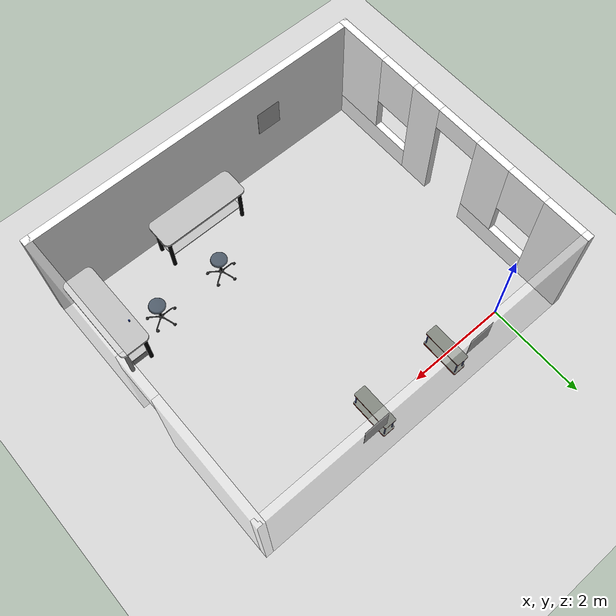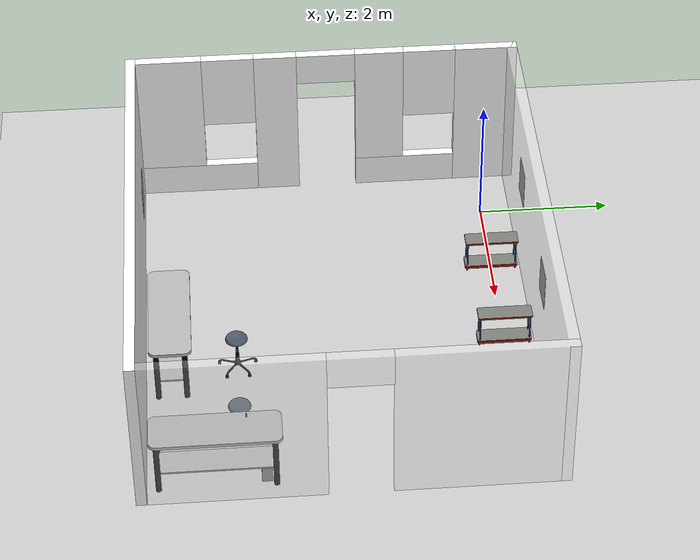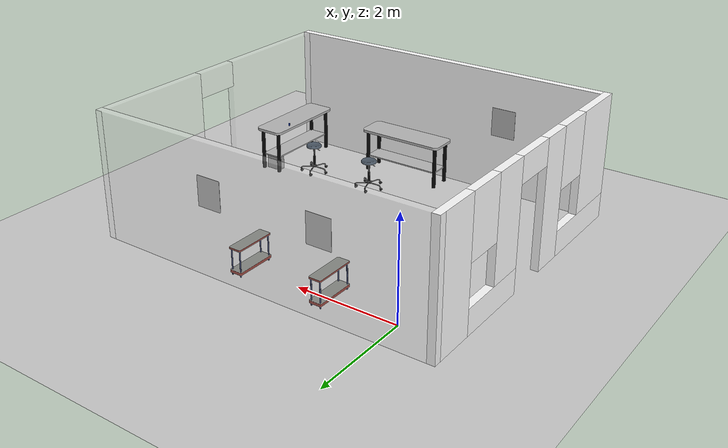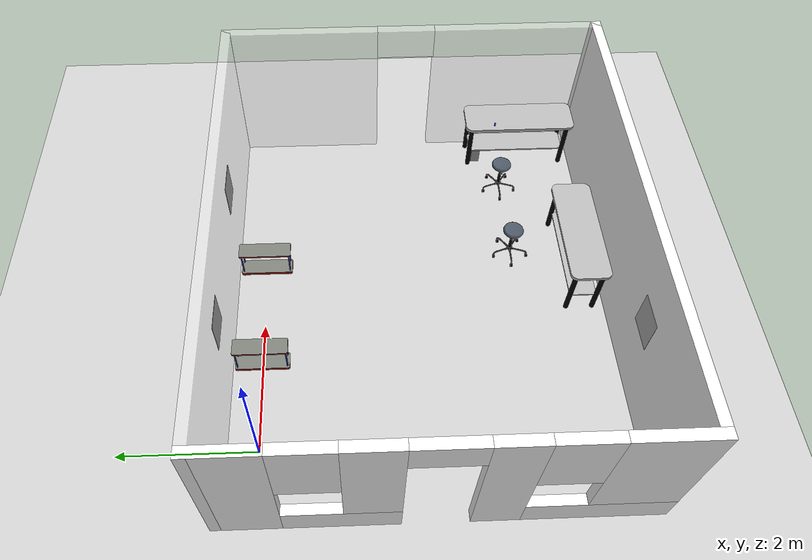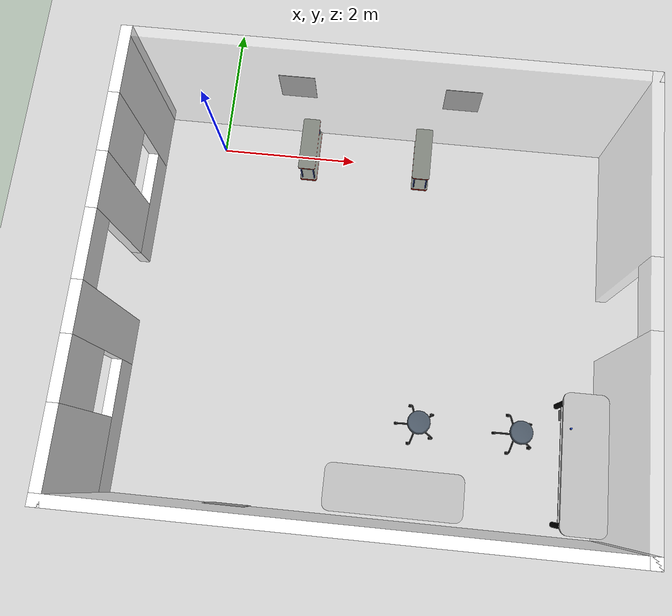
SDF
<sdf version="1.7">
 <world name="default">
  <light name="sun" type="directional">
   <pose>0 0 10 0 -0 0</pose>
   <diffuse>0.8 0.8 0.8 1</diffuse>
   <specular>0.2 0.2 0.2 1</specular>
   <attenuation>
    <range>1000</range>
    <constant>0.9</constant>
    <linear>0.01</linear>
    <quadratic>0.001</quadratic>
   </attenuation>
   <direction>-0.5 0.1 -0.9</direction>
   <spot><inner_angle>0</inner_angle><outer_angle>0</outer_angle><falloff>0</falloff></spot>
  </light>
  <model name="ground_plane">
   <pose>2.4 -2.4 0 0 -0 1.5708</pose>
   <static>1</static>
   <link name="link">
    <collision name="collision">
     <geometry><plane><normal>0 0 1</normal><size>100 100</size></plane></geometry>
     <surface><friction><ode><mu>100</mu><mu2>50</mu2></ode></friction></surface>
    </collision>
    <visual name="visual">
     <cast_shadows>0</cast_shadows>
     <geometry><plane><normal>0 0 1</normal><size>6 7</size></plane></geometry>
     <material>
      <script>
       <uri>model://room/materials/scripts</uri>
       <uri>model://room/materials/textures</uri>
       <name>ground/material</name>
      </script>
     </material>
    </visual>
   </link>
  </model>
  <gravity>0 0 -9.8</gravity>
  <magnetic_field>6e-06 2.3e-05 -4.2e-05</magnetic_field>
  <atmosphere type="adiabatic"/>
  <physics type="ode">
   <max_step_size>0.001</max_step_size>
   <real_time_factor>1</real_time_factor>
   <real_time_update_rate>1000</real_time_update_rate>
  </physics>
  <scene><ambient>0.4 0.4 0.4 1</ambient><background>0.7 0.7 0.7 1</background><shadows>1</shadows></scene>
  <spherical_coordinates>
   <surface_model>EARTH_WGS84</surface_model>
   <latitude_deg>0</latitude_deg>
   <longitude_deg>0</longitude_deg>
   <elevation>0</elevation>
   <heading_deg>0</heading_deg>
  </spherical_coordinates>
  <model name="room">
   <pose>2.45415 -2.72247 0 0 -0 0</pose>
   <link name="Wall_11">
    <pose>0 3.24692 0 0 -0 0</pose>
    <inertial>
     <mass>1</mass>
     <inertia><ixx>1</ixx><ixy>0</ixy><ixz>0</ixz><iyy>1</iyy><iyz>0</iyz><izz>1</izz></inertia>
    </inertial>
    <visual name="Wall_11_Visual">
     <pose>0 0 1.25 0 -0 0</pose>
     <geometry><box><size>7 0.15 2.5</size></box></geometry>
     <material>
      <script>
       <uri>model://room/materials/scripts</uri>
       <uri>model://room/materials/textures</uri>
       <name>testing/material</name>
      </script>
      <ambient>1 1 1 1</ambient>
      <shader type="pixel"><normal_map>__default__</normal_map></shader>
      <diffuse>1 1 1 1</diffuse>
      <specular>0 0 0 1</specular>
      <emissive>0 0 0 1</emissive>
     </material>
     <meta><layer>0</layer></meta>
     <transparency>0.7</transparency>
    </visual>
    <collision name="Wall_11_Collision">
     <pose>0 0 1.25 0 -0 0</pose>
     <geometry><box><size>7 0.15 2.5</size></box></geometry>
     <surface>
      <friction>
       <ode><mu>1</mu><mu2>1</mu2><fdir1>0 0 0</fdir1><slip1>0</slip1><slip2>0</slip2></ode>
       <torsional>
        <coefficient>1</coefficient>
        <patch_radius>0</patch_radius>
        <surface_radius>0</surface_radius>
        <use_patch_radius>1</use_patch_radius>
        <ode><slip>0</slip></ode>
       </torsional>
      </friction>
      <bounce><restitution_coefficient>0</restitution_coefficient><threshold>1e+06</threshold></bounce>
      <contact>
       <collide_without_contact>0</collide_without_contact>
       <collide_without_contact_bitmask>1</collide_without_contact_bitmask>
       <collide_bitmask>1</collide_bitmask>
       <ode>
        <soft_cfm>0</soft_cfm>
        <soft_erp>0.2</soft_erp>
        <kp>1e+13</kp>
        <kd>1</kd>
        <max_vel>0.01</max_vel>
        <min_depth>0</min_depth>
       </ode>
       <bullet>
        <split_impulse>1</split_impulse>
        <split_impulse_penetration_threshold>-0.01</split_impulse_penetration_threshold>
        <soft_cfm>0</soft_cfm>
        <soft_erp>0.2</soft_erp>
        <kp>1e+13</kp>
        <kd>1</kd>
       </bullet>
      </contact>
     </surface>
    </collision>
   </link>
   <link name="Wall_5">
    <pose>-3.425 0.321923 0 0 0 -1.5708</pose>
    <visual name="Wall_5_Visual_0">
     <pose>-2.52329 0 1.25 0 -0 0</pose>
     <geometry><box><size>0.953415 0.15 2.5</size></box></geometry>
     <material>
      <script>
       <uri>model://room/materials/scripts</uri>
       <uri>model://room/materials/textures</uri>
       <name>testing/material</name>
      </script>
      <ambient>1 1 1 1</ambient>
      <shader type="pixel"/>
     </material>
     <meta><layer>0</layer></meta>
    </visual>
    <visual name="Wall_5_Visual_1">
     <pose>0.726172 0 1.25 0 -0 0</pose>
     <geometry><box><size>0.653489 0.15 2.5</size></box></geometry>
     <material>
      <script>
       <uri>model://room/materials/scripts</uri>
       <uri>model://room/materials/textures</uri>
       <name>testing/material</name>
      </script>
      <ambient>1 1 1 1</ambient>
      <shader type="pixel"/>
     </material>
     <meta><layer>0</layer></meta>
    </visual>
    <visual name="Wall_5_Visual_2">
     <pose>-1.27358 0 0.25 0 -0 0</pose>
     <geometry><box><size>1.54601 0.15 0.5</size></box></geometry>
     <material>
      <script>
       <uri>model://room/materials/scripts</uri>
       <uri>model://room/materials/textures</uri>
       <name>testing/material</name>
      </script>
      <ambient>1 1 1 1</ambient>
      <shader type="pixel"/>
     </material>
     <meta><layer>0</layer></meta>
    </visual>
    <visual name="Wall_5_Visual_3">
     <pose>2.02646 0 0.25 0 -0 0</pose>
     <geometry><box><size>1.94708 0.15 0.5</size></box></geometry>
     <material>
      <script>
       <uri>model://room/materials/scripts</uri>
       <uri>model://room/materials/textures</uri>
       <name>testing/material</name>
      </script>
      <ambient>1 1 1 1</ambient>
      <shader type="pixel"/>
     </material>
     <meta><layer>0</layer></meta>
    </visual>
    <visual name="Wall_5_Visual_4">
     <pose>-0.873579 0 1.5 0 -0 0</pose>
     <geometry><box><size>0.746012 0.15 2</size></box></geometry>
     <material>
      <script>
       <uri>model://room/materials/scripts</uri>
       <uri>model://room/materials/textures</uri>
       <name>testing/material</name>
      </script>
      <ambient>1 1 1 1</ambient>
      <shader type="pixel"/>
     </material>
     <meta><layer>0</layer></meta>
    </visual>
    <visual name="Wall_5_Visual_5">
     <pose>-0.873579 0 1.5 0 -0 0</pose>
     <geometry><box><size>0.746012 0.15 2</size></box></geometry>
     <material>
      <script>
       <uri>model://room/materials/scripts</uri>
       <uri>model://room/materials/textures</uri>
       <name>testing/material</name>
      </script>
      <ambient>1 1 1 1</ambient>
      <shader type="pixel"/>
     </material>
     <meta><layer>0</layer></meta>
    </visual>
    <visual name="Wall_5_Visual_6">
     <pose>2.42646 0 1.5 0 -0 0</pose>
     <geometry><box><size>1.14708 0.15 2</size></box></geometry>
     <material>
      <script>
       <uri>model://room/materials/scripts</uri>
       <uri>model://room/materials/textures</uri>
       <name>testing/material</name>
      </script>
      <ambient>1 1 1 1</ambient>
      <shader type="pixel"/>
     </material>
     <meta><layer>0</layer></meta>
    </visual>
    <visual name="Wall_5_Visual_7">
     <pose>-1.64658 0 1.9 0 -0 0</pose>
     <geometry><box><size>0.8 0.15 1.2</size></box></geometry>
     <material>
      <script>
       <uri>model://room/materials/scripts</uri>
       <uri>model://room/materials/textures</uri>
       <name>testing/material</name>
      </script>
      <ambient>1 1 1 1</ambient>
      <shader type="pixel"/>
     </material>
     <meta><layer>0</layer></meta>
    </visual>
    <visual name="Wall_5_Visual_8">
     <pose>1.45292 0 1.9 0 -0 0</pose>
     <geometry><box><size>0.8 0.15 1.2</size></box></geometry>
     <material>
      <script>
       <uri>model://room/materials/scripts</uri>
       <uri>model://room/materials/textures</uri>
       <name>testing/material</name>
      </script>
      <ambient>1 1 1 1</ambient>
      <shader type="pixel"/>
     </material>
     <meta><layer>0</layer></meta>
    </visual>
    <visual name="Wall_5_Visual_9">
     <pose>-0.050573 0 2.25 0 -0 0</pose>
     <geometry><box><size>0.9 0.15 0.5</size></box></geometry>
     <material>
      <script>
       <uri>model://room/materials/scripts</uri>
       <uri>model://room/materials/textures</uri>
       <name>testing/material</name>
      </script>
      <ambient>1 1 1 1</ambient>
      <shader type="pixel"/>
     </material>
     <meta><layer>0</layer></meta>
    </visual>
    <visual name="Wall_5_Visual_10">
     <pose>-0.050573 0 2.25 0 -0 0</pose>
     <geometry><box><size>0.9 0.15 0.5</size></box></geometry>
     <material>
      <script>
       <uri>model://room/materials/scripts</uri>
       <uri>model://room/materials/textures</uri>
       <name>testing/material</name>
      </script>
      <ambient>1 1 1 1</ambient>
      <shader type="pixel"/>
     </material>
     <meta><layer>0</layer></meta>
    </visual>
    <collision name="Wall_5_Collision_0">
     <pose>-2.52329 0 1.25 0 -0 0</pose>
     <geometry><box><size>0.953415 0.15 2.5</size></box></geometry>
     <surface>
      <friction>
       <ode><mu>1</mu><mu2>1</mu2><fdir1>0 0 0</fdir1><slip1>0</slip1><slip2>0</slip2></ode>
       <torsional>
        <coefficient>1</coefficient>
        <patch_radius>0</patch_radius>
        <surface_radius>0</surface_radius>
        <use_patch_radius>1</use_patch_radius>
        <ode><slip>0</slip></ode>
       </torsional>
      </friction>
      <bounce><restitution_coefficient>0</restitution_coefficient><threshold>1e+06</threshold></bounce>
      <contact>
       <collide_without_contact>0</collide_without_contact>
       <collide_without_contact_bitmask>1</collide_without_contact_bitmask>
       <collide_bitmask>1</collide_bitmask>
       <ode>
        <soft_cfm>0</soft_cfm>
        <soft_erp>0.2</soft_erp>
        <kp>1e+13</kp>
        <kd>1</kd>
        <max_vel>0.01</max_vel>
        <min_depth>0</min_depth>
       </ode>
       <bullet>
        <split_impulse>1</split_impulse>
        <split_impulse_penetration_threshold>-0.01</split_impulse_penetration_threshold>
        <soft_cfm>0</soft_cfm>
        <soft_erp>0.2</soft_erp>
        <kp>1e+13</kp>
        <kd>1</kd>
       </bullet>
      </contact>
     </surface>
    </collision>
    <collision name="Wall_5_Collision_1">
     <pose>0.726172 0 1.25 0 -0 0</pose>
     <geometry><box><size>0.653489 0.15 2.5</size></box></geometry>
     <surface>
      <friction>
       <ode><mu>1</mu><mu2>1</mu2><fdir1>0 0 0</fdir1><slip1>0</slip1><slip2>0</slip2></ode>
       <torsional>
        <coefficient>1</coefficient>
        <patch_radius>0</patch_radius>
        <surface_radius>0</surface_radius>
        <use_patch_radius>1</use_patch_radius>
        <ode><slip>0</slip></ode>
       </torsional>
      </friction>
      <bounce><restitution_coefficient>0</restitution_coefficient><threshold>1e+06</threshold></bounce>
      <contact>
       <collide_without_contact>0</collide_without_contact>
       <collide_without_contact_bitmask>1</collide_without_contact_bitmask>
       <collide_bitmask>1</collide_bitmask>
       <ode>
        <soft_cfm>0</soft_cfm>
        <soft_erp>0.2</soft_erp>
        <kp>1e+13</kp>
        <kd>1</kd>
        <max_vel>0.01</max_vel>
        <min_depth>0</min_depth>
       </ode>
       <bullet>
        <split_impulse>1</split_impulse>
        <split_impulse_penetration_threshold>-0.01</split_impulse_penetration_threshold>
        <soft_cfm>0</soft_cfm>
        <soft_erp>0.2</soft_erp>
        <kp>1e+13</kp>
        <kd>1</kd>
       </bullet>
      </contact>
     </surface>
    </collision>
    <collision name="Wall_5_Collision_2">
     <pose>-1.27358 0 0.25 0 -0 0</pose>
     <geometry><box><size>1.54601 0.15 0.5</size></box></geometry>
     <surface>
      <friction>
       <ode><mu>1</mu><mu2>1</mu2><fdir1>0 0 0</fdir1><slip1>0</slip1><slip2>0</slip2></ode>
       <torsional>
        <coefficient>1</coefficient>
        <patch_radius>0</patch_radius>
        <surface_radius>0</surface_radius>
        <use_patch_radius>1</use_patch_radius>
        <ode><slip>0</slip></ode>
       </torsional>
      </friction>
      <bounce><restitution_coefficient>0</restitution_coefficient><threshold>1e+06</threshold></bounce>
      <contact>
       <collide_without_contact>0</collide_without_contact>
       <collide_without_contact_bitmask>1</collide_without_contact_bitmask>
       <collide_bitmask>1</collide_bitmask>
       <ode>
        <soft_cfm>0</soft_cfm>
        <soft_erp>0.2</soft_erp>
        <kp>1e+13</kp>
        <kd>1</kd>
        <max_vel>0.01</max_vel>
        <min_depth>0</min_depth>
       </ode>
       <bullet>
        <split_impulse>1</split_impulse>
        <split_impulse_penetration_threshold>-0.01</split_impulse_penetration_threshold>
        <soft_cfm>0</soft_cfm>
        <soft_erp>0.2</soft_erp>
        <kp>1e+13</kp>
        <kd>1</kd>
       </bullet>
      </contact>
     </surface>
    </collision>
    <collision name="Wall_5_Collision_3">
     <pose>2.02646 0 0.25 0 -0 0</pose>
     <geometry><box><size>1.94708 0.15 0.5</size></box></geometry>
     <surface>
      <friction>
       <ode><mu>1</mu><mu2>1</mu2><fdir1>0 0 0</fdir1><slip1>0</slip1><slip2>0</slip2></ode>
       <torsional>
        <coefficient>1</coefficient>
        <patch_radius>0</patch_radius>
        <surface_radius>0</surface_radius>
        <use_patch_radius>1</use_patch_radius>
        <ode><slip>0</slip></ode>
       </torsional>
      </friction>
      <bounce><restitution_coefficient>0</restitution_coefficient><threshold>1e+06</threshold></bounce>
      <contact>
       <collide_without_contact>0</collide_without_contact>
       <collide_without_contact_bitmask>1</collide_without_contact_bitmask>
       <collide_bitmask>1</collide_bitmask>
       <ode>
        <soft_cfm>0</soft_cfm>
        <soft_erp>0.2</soft_erp>
        <kp>1e+13</kp>
        <kd>1</kd>
        <max_vel>0.01</max_vel>
        <min_depth>0</min_depth>
       </ode>
       <bullet>
        <split_impulse>1</split_impulse>
        <split_impulse_penetration_threshold>-0.01</split_impulse_penetration_threshold>
        <soft_cfm>0</soft_cfm>
        <soft_erp>0.2</soft_erp>
        <kp>1e+13</kp>
        <kd>1</kd>
       </bullet>
      </contact>
     </surface>
    </collision>
    <collision name="Wall_5_Collision_4">
     <pose>-0.873579 0 1.5 0 -0 0</pose>
     <geometry><box><size>0.746012 0.15 2</size></box></geometry>
     <surface>
      <friction>
       <ode><mu>1</mu><mu2>1</mu2><fdir1>0 0 0</fdir1><slip1>0</slip1><slip2>0</slip2></ode>
       <torsional>
        <coefficient>1</coefficient>
        <patch_radius>0</patch_radius>
        <surface_radius>0</surface_radius>
        <use_patch_radius>1</use_patch_radius>
        <ode><slip>0</slip></ode>
       </torsional>
      </friction>
      <bounce><restitution_coefficient>0</restitution_coefficient><threshold>1e+06</threshold></bounce>
      <contact>
       <collide_without_contact>0</collide_without_contact>
       <collide_without_contact_bitmask>1</collide_without_contact_bitmask>
       <collide_bitmask>1</collide_bitmask>
       <ode>
        <soft_cfm>0</soft_cfm>
        <soft_erp>0.2</soft_erp>
        <kp>1e+13</kp>
        <kd>1</kd>
        <max_vel>0.01</max_vel>
        <min_depth>0</min_depth>
       </ode>
       <bullet>
        <split_impulse>1</split_impulse>
        <split_impulse_penetration_threshold>-0.01</split_impulse_penetration_threshold>
        <soft_cfm>0</soft_cfm>
        <soft_erp>0.2</soft_erp>
        <kp>1e+13</kp>
        <kd>1</kd>
       </bullet>
      </contact>
     </surface>
    </collision>
    <collision name="Wall_5_Collision_5">
     <pose>-0.873579 0 1.5 0 -0 0</pose>
     <geometry><box><size>0.746012 0.15 2</size></box></geometry>
     <surface>
      <friction>
       <ode><mu>1</mu><mu2>1</mu2><fdir1>0 0 0</fdir1><slip1>0</slip1><slip2>0</slip2></ode>
       <torsional>
        <coefficient>1</coefficient>
        <patch_radius>0</patch_radius>
        <surface_radius>0</surface_radius>
        <use_patch_radius>1</use_patch_radius>
        <ode><slip>0</slip></ode>
       </torsional>
      </friction>
      <bounce><restitution_coefficient>0</restitution_coefficient><threshold>1e+06</threshold></bounce>
      <contact>
       <collide_without_contact>0</collide_without_contact>
       <collide_without_contact_bitmask>1</collide_without_contact_bitmask>
       <collide_bitmask>1</collide_bitmask>
       <ode>
        <soft_cfm>0</soft_cfm>
        <soft_erp>0.2</soft_erp>
        <kp>1e+13</kp>
        <kd>1</kd>
        <max_vel>0.01</max_vel>
        <min_depth>0</min_depth>
       </ode>
       <bullet>
        <split_impulse>1</split_impulse>
        <split_impulse_penetration_threshold>-0.01</split_impulse_penetration_threshold>
        <soft_cfm>0</soft_cfm>
        <soft_erp>0.2</soft_erp>
        <kp>1e+13</kp>
        <kd>1</kd>
       </bullet>
      </contact>
     </surface>
    </collision>
    <collision name="Wall_5_Collision_6">
     <pose>2.42646 0 1.5 0 -0 0</pose>
     <geometry><box><size>1.14708 0.15 2</size></box></geometry>
     <surface>
      <friction>
       <ode><mu>1</mu><mu2>1</mu2><fdir1>0 0 0</fdir1><slip1>0</slip1><slip2>0</slip2></ode>
       <torsional>
        <coefficient>1</coefficient>
        <patch_radius>0</patch_radius>
        <surface_radius>0</surface_radius>
        <use_patch_radius>1</use_patch_radius>
        <ode><slip>0</slip></ode>
       </torsional>
      </friction>
      <bounce><restitution_coefficient>0</restitution_coefficient><threshold>1e+06</threshold></bounce>
      <contact>
       <collide_without_contact>0</collide_without_contact>
       <collide_without_contact_bitmask>1</collide_without_contact_bitmask>
       <collide_bitmask>1</collide_bitmask>
       <ode>
        <soft_cfm>0</soft_cfm>
        <soft_erp>0.2</soft_erp>
        <kp>1e+13</kp>
        <kd>1</kd>
        <max_vel>0.01</max_vel>
        <min_depth>0</min_depth>
       </ode>
       <bullet>
        <split_impulse>1</split_impulse>
        <split_impulse_penetration_threshold>-0.01</split_impulse_penetration_threshold>
        <soft_cfm>0</soft_cfm>
        <soft_erp>0.2</soft_erp>
        <kp>1e+13</kp>
        <kd>1</kd>
       </bullet>
      </contact>
     </surface>
    </collision>
    <collision name="Wall_5_Collision_7">
     <pose>-1.64658 0 1.9 0 -0 0</pose>
     <geometry><box><size>0.8 0.15 1.2</size></box></geometry>
     <surface>
      <friction>
       <ode><mu>1</mu><mu2>1</mu2><fdir1>0 0 0</fdir1><slip1>0</slip1><slip2>0</slip2></ode>
       <torsional>
        <coefficient>1</coefficient>
        <patch_radius>0</patch_radius>
        <surface_radius>0</surface_radius>
        <use_patch_radius>1</use_patch_radius>
        <ode><slip>0</slip></ode>
       </torsional>
      </friction>
      <bounce><restitution_coefficient>0</restitution_coefficient><threshold>1e+06</threshold></bounce>
      <contact>
       <collide_without_contact>0</collide_without_contact>
       <collide_without_contact_bitmask>1</collide_without_contact_bitmask>
       <collide_bitmask>1</collide_bitmask>
       <ode>
        <soft_cfm>0</soft_cfm>
        <soft_erp>0.2</soft_erp>
        <kp>1e+13</kp>
        <kd>1</kd>
        <max_vel>0.01</max_vel>
        <min_depth>0</min_depth>
       </ode>
       <bullet>
        <split_impulse>1</split_impulse>
        <split_impulse_penetration_threshold>-0.01</split_impulse_penetration_threshold>
        <soft_cfm>0</soft_cfm>
        <soft_erp>0.2</soft_erp>
        <kp>1e+13</kp>
        <kd>1</kd>
       </bullet>
      </contact>
     </surface>
    </collision>
    <collision name="Wall_5_Collision_8">
     <pose>1.45292 0 1.9 0 -0 0</pose>
     <geometry><box><size>0.8 0.15 1.2</size></box></geometry>
     <surface>
      <friction>
       <ode><mu>1</mu><mu2>1</mu2><fdir1>0 0 0</fdir1><slip1>0</slip1><slip2>0</slip2></ode>
       <torsional>
        <coefficient>1</coefficient>
        <patch_radius>0</patch_radius>
        <surface_radius>0</surface_radius>
        <use_patch_radius>1</use_patch_radius>
        <ode><slip>0</slip></ode>
       </torsional>
      </friction>
      <bounce><restitution_coefficient>0</restitution_coefficient><threshold>1e+06</threshold></bounce>
      <contact>
       <collide_without_contact>0</collide_without_contact>
       <collide_without_contact_bitmask>1</collide_without_contact_bitmask>
       <collide_bitmask>1</collide_bitmask>
       <ode>
        <soft_cfm>0</soft_cfm>
        <soft_erp>0.2</soft_erp>
        <kp>1e+13</kp>
        <kd>1</kd>
        <max_vel>0.01</max_vel>
        <min_depth>0</min_depth>
       </ode>
       <bullet>
        <split_impulse>1</split_impulse>
        <split_impulse_penetration_threshold>-0.01</split_impulse_penetration_threshold>
        <soft_cfm>0</soft_cfm>
        <soft_erp>0.2</soft_erp>
        <kp>1e+13</kp>
        <kd>1</kd>
       </bullet>
      </contact>
     </surface>
    </collision>
    <collision name="Wall_5_Collision_9">
     <pose>-0.050573 0 2.25 0 -0 0</pose>
     <geometry><box><size>0.9 0.15 0.5</size></box></geometry>
     <surface>
      <friction>
       <ode><mu>1</mu><mu2>1</mu2><fdir1>0 0 0</fdir1><slip1>0</slip1><slip2>0</slip2></ode>
       <torsional>
        <coefficient>1</coefficient>
        <patch_radius>0</patch_radius>
        <surface_radius>0</surface_radius>
        <use_patch_radius>1</use_patch_radius>
        <ode><slip>0</slip></ode>
       </torsional>
      </friction>
      <bounce><restitution_coefficient>0</restitution_coefficient><threshold>1e+06</threshold></bounce>
      <contact>
       <collide_without_contact>0</collide_without_contact>
       <collide_without_contact_bitmask>1</collide_without_contact_bitmask>
       <collide_bitmask>1</collide_bitmask>
       <ode>
        <soft_cfm>0</soft_cfm>
        <soft_erp>0.2</soft_erp>
        <kp>1e+13</kp>
        <kd>1</kd>
        <max_vel>0.01</max_vel>
        <min_depth>0</min_depth>
       </ode>
       <bullet>
        <split_impulse>1</split_impulse>
        <split_impulse_penetration_threshold>-0.01</split_impulse_penetration_threshold>
        <soft_cfm>0</soft_cfm>
        <soft_erp>0.2</soft_erp>
        <kp>1e+13</kp>
        <kd>1</kd>
       </bullet>
      </contact>
     </surface>
    </collision>
    <collision name="Wall_5_Collision_10">
     <pose>-0.050573 0 2.25 0 -0 0</pose>
     <geometry><box><size>0.9 0.15 0.5</size></box></geometry>
     <surface>
      <friction>
       <ode><mu>1</mu><mu2>1</mu2><fdir1>0 0 0</fdir1><slip1>0</slip1><slip2>0</slip2></ode>
       <torsional>
        <coefficient>1</coefficient>
        <patch_radius>0</patch_radius>
        <surface_radius>0</surface_radius>
        <use_patch_radius>1</use_patch_radius>
        <ode><slip>0</slip></ode>
       </torsional>
      </friction>
      <bounce><restitution_coefficient>0</restitution_coefficient><threshold>1e+06</threshold></bounce>
      <contact>
       <collide_without_contact>0</collide_without_contact>
       <collide_without_contact_bitmask>1</collide_without_contact_bitmask>
       <collide_bitmask>1</collide_bitmask>
       <ode>
        <soft_cfm>0</soft_cfm>
        <soft_erp>0.2</soft_erp>
        <kp>1e+13</kp>
        <kd>1</kd>
        <max_vel>0.01</max_vel>
        <min_depth>0</min_depth>
       </ode>
       <bullet>
        <split_impulse>1</split_impulse>
        <split_impulse_penetration_threshold>-0.01</split_impulse_penetration_threshold>
        <soft_cfm>0</soft_cfm>
        <soft_erp>0.2</soft_erp>
        <kp>1e+13</kp>
        <kd>1</kd>
       </bullet>
      </contact>
     </surface>
    </collision>
   </link>
   <link name="Wall_7">
    <pose>0 -2.60308 0 0 -0 0</pose>
    <visual name="Wall_7_Visual">
     <pose>0 0 1.25 0 -0 0</pose>
     <geometry><box><size>7 0.15 2.5</size></box></geometry>
     <material>
      <script>
       <uri>model://room/materials/scripts</uri>
       <uri>model://room/materials/textures</uri>
       <name>testing/material</name>
      </script>
      <ambient>1 1 1 1</ambient>
      <shader type="pixel"/>
     </material>
     <meta><layer>0</layer></meta>
    </visual>
    <collision name="Wall_7_Collision">
     <pose>0 0 1.25 0 -0 0</pose>
     <geometry><box><size>7 0.15 2.5</size></box></geometry>
     <surface>
      <friction>
       <ode><mu>1</mu><mu2>1</mu2><fdir1>0 0 0</fdir1><slip1>0</slip1><slip2>0</slip2></ode>
       <torsional>
        <coefficient>1</coefficient>
        <patch_radius>0</patch_radius>
        <surface_radius>0</surface_radius>
        <use_patch_radius>1</use_patch_radius>
        <ode><slip>0</slip></ode>
       </torsional>
      </friction>
      <bounce><restitution_coefficient>0</restitution_coefficient><threshold>1e+06</threshold></bounce>
      <contact>
       <collide_without_contact>0</collide_without_contact>
       <collide_without_contact_bitmask>1</collide_without_contact_bitmask>
       <collide_bitmask>1</collide_bitmask>
       <ode>
        <soft_cfm>0</soft_cfm>
        <soft_erp>0.2</soft_erp>
        <kp>1e+13</kp>
        <kd>1</kd>
        <max_vel>0.01</max_vel>
        <min_depth>0</min_depth>
       </ode>
       <bullet>
        <split_impulse>1</split_impulse>
        <split_impulse_penetration_threshold>-0.01</split_impulse_penetration_threshold>
        <soft_cfm>0</soft_cfm>
        <soft_erp>0.2</soft_erp>
        <kp>1e+13</kp>
        <kd>1</kd>
       </bullet>
      </contact>
     </surface>
    </collision>
   </link>
   <link name="Wall_9">
    <pose>3.425 0.321923 0 0 -0 1.5708</pose>
    <inertial>
     <mass>1</mass>
     <inertia><ixx>1</ixx><ixy>0</ixy><ixz>0</ixz><iyy>1</iyy><iyz>0</iyz><izz>1</izz></inertia>
    </inertial>
    <visual name="Wall_9_Visual_0">
     <pose>-1.67971 0 1.25 0 -0 0</pose>
     <geometry><box><size>2.64057 0.15 2.5</size></box></geometry>
     <material>
      <script>
       <uri>model://room/materials/scripts</uri>
       <uri>model://room/materials/textures</uri>
       <name>testing/material</name>
      </script>
      <ambient>1 1 1 1</ambient>
      <shader type="pixel"><normal_map>__default__</normal_map></shader>
      <diffuse>1 1 1 1</diffuse>
      <specular>0 0 0 1</specular>
      <emissive>0 0 0 1</emissive>
     </material>
     <meta><layer>0</layer></meta>
     <transparency>0.7</transparency>
    </visual>
    <visual name="Wall_9_Visual_1">
     <pose>1.77029 0 1.25 0 -0 0</pose>
     <geometry><box><size>2.45943 0.15 2.5</size></box></geometry>
     <material>
      <script>
       <uri>model://room/materials/scripts</uri>
       <uri>model://room/materials/textures</uri>
       <name>testing/material</name>
      </script>
      <ambient>1 1 1 1</ambient>
      <shader type="pixel"><normal_map>__default__</normal_map></shader>
      <diffuse>1 1 1 1</diffuse>
      <specular>0 0 0 1</specular>
      <emissive>0 0 0 1</emissive>
     </material>
     <meta><layer>0</layer></meta>
     <transparency>0.7</transparency>
    </visual>
    <visual name="Wall_9_Visual_2">
     <pose>0.090573 0 2.25 0 -0 0</pose>
     <geometry><box><size>0.9 0.15 0.5</size></box></geometry>
     <material>
      <script>
       <uri>model://room/materials/scripts</uri>
       <uri>model://room/materials/textures</uri>
       <name>testing/material</name>
      </script>
      <ambient>1 1 1 1</ambient>
      <shader type="pixel"><normal_map>__default__</normal_map></shader>
      <diffuse>1 1 1 1</diffuse>
      <specular>0 0 0 1</specular>
      <emissive>0 0 0 1</emissive>
     </material>
     <meta><layer>0</layer></meta>
     <transparency>0.7</transparency>
    </visual>
    <collision name="Wall_9_Collision_0">
     <pose>-1.67971 0 1.25 0 -0 0</pose>
     <geometry><box><size>2.64057 0.15 2.5</size></box></geometry>
     <surface>
      <friction>
       <ode><mu>1</mu><mu2>1</mu2><fdir1>0 0 0</fdir1><slip1>0</slip1><slip2>0</slip2></ode>
       <torsional>
        <coefficient>1</coefficient>
        <patch_radius>0</patch_radius>
        <surface_radius>0</surface_radius>
        <use_patch_radius>1</use_patch_radius>
        <ode><slip>0</slip></ode>
       </torsional>
      </friction>
      <bounce><restitution_coefficient>0</restitution_coefficient><threshold>1e+06</threshold></bounce>
      <contact>
       <collide_without_contact>0</collide_without_contact>
       <collide_without_contact_bitmask>1</collide_without_contact_bitmask>
       <collide_bitmask>1</collide_bitmask>
       <ode>
        <soft_cfm>0</soft_cfm>
        <soft_erp>0.2</soft_erp>
        <kp>1e+13</kp>
        <kd>1</kd>
        <max_vel>0.01</max_vel>
        <min_depth>0</min_depth>
       </ode>
       <bullet>
        <split_impulse>1</split_impulse>
        <split_impulse_penetration_threshold>-0.01</split_impulse_penetration_threshold>
        <soft_cfm>0</soft_cfm>
        <soft_erp>0.2</soft_erp>
        <kp>1e+13</kp>
        <kd>1</kd>
       </bullet>
      </contact>
     </surface>
    </collision>
    <collision name="Wall_9_Collision_1">
     <pose>1.77029 0 1.25 0 -0 0</pose>
     <geometry><box><size>2.45943 0.15 2.5</size></box></geometry>
     <surface>
      <friction>
       <ode><mu>1</mu><mu2>1</mu2><fdir1>0 0 0</fdir1><slip1>0</slip1><slip2>0</slip2></ode>
       <torsional>
        <coefficient>1</coefficient>
        <patch_radius>0</patch_radius>
        <surface_radius>0</surface_radius>
        <use_patch_radius>1</use_patch_radius>
        <ode><slip>0</slip></ode>
       </torsional>
      </friction>
      <bounce><restitution_coefficient>0</restitution_coefficient><threshold>1e+06</threshold></bounce>
      <contact>
       <collide_without_contact>0</collide_without_contact>
       <collide_without_contact_bitmask>1</collide_without_contact_bitmask>
       <collide_bitmask>1</collide_bitmask>
       <ode>
        <soft_cfm>0</soft_cfm>
        <soft_erp>0.2</soft_erp>
        <kp>1e+13</kp>
        <kd>1</kd>
        <max_vel>0.01</max_vel>
        <min_depth>0</min_depth>
       </ode>
       <bullet>
        <split_impulse>1</split_impulse>
        <split_impulse_penetration_threshold>-0.01</split_impulse_penetration_threshold>
        <soft_cfm>0</soft_cfm>
        <soft_erp>0.2</soft_erp>
        <kp>1e+13</kp>
        <kd>1</kd>
       </bullet>
      </contact>
     </surface>
    </collision>
    <collision name="Wall_9_Collision_2">
     <pose>0.090573 0 2.25 0 -0 0</pose>
     <geometry><box><size>0.9 0.15 0.5</size></box></geometry>
     <surface>
      <friction>
       <ode><mu>1</mu><mu2>1</mu2><fdir1>0 0 0</fdir1><slip1>0</slip1><slip2>0</slip2></ode>
       <torsional>
        <coefficient>1</coefficient>
        <patch_radius>0</patch_radius>
        <surface_radius>0</surface_radius>
        <use_patch_radius>1</use_patch_radius>
        <ode><slip>0</slip></ode>
       </torsional>
      </friction>
      <bounce><restitution_coefficient>0</restitution_coefficient><threshold>1e+06</threshold></bounce>
      <contact>
       <collide_without_contact>0</collide_without_contact>
       <collide_without_contact_bitmask>1</collide_without_contact_bitmask>
       <collide_bitmask>1</collide_bitmask>
       <ode>
        <soft_cfm>0</soft_cfm>
        <soft_erp>0.2</soft_erp>
        <kp>1e+13</kp>
        <kd>1</kd>
        <max_vel>0.01</max_vel>
        <min_depth>0</min_depth>
       </ode>
       <bullet>
        <split_impulse>1</split_impulse>
        <split_impulse_penetration_threshold>-0.01</split_impulse_penetration_threshold>
        <soft_cfm>0</soft_cfm>
        <soft_erp>0.2</soft_erp>
        <kp>1e+13</kp>
        <kd>1</kd>
       </bullet>
      </contact>
     </surface>
    </collision>
   </link>
   <static>1</static>
  </model>
  <model name="stool1">
   <pose>2.7 -3 0 0 -0 0</pose>
   <static>1</static>
   <link name="body">
    <visual name="visual">
     <geometry><mesh><uri>model://stool_v2/meshes/stool_v2.dae</uri></mesh></geometry>
    </visual>
    <collision name="collision">
     <geometry><mesh><uri>model://stool_v2/meshes/stool_v2.dae</uri></mesh></geometry>
    </collision>
   </link>
  </model>
  <model name="stool2">
   <pose>1.3 -3 0 0 -0 0</pose>
   <static>1</static>
   <link name="body">
    <visual name="visual">
     <geometry><mesh><uri>model://stool_v2/meshes/stool_v2.dae</uri></mesh></geometry>
    </visual>
    <collision name="collision">
     <geometry><mesh><uri>model://stool_v2/meshes/stool_v2.dae</uri></mesh></geometry>
    </collision>
   </link>
  </model>
  <model name="table1">
   <pose>5.1 -2.75 0 0 0 -1.57</pose>
   <static>1</static>
   <link name="body">
    <visual name="visual">
     <geometry><mesh><uri>model://table_v2/meshes/table_v2.dae</uri></mesh></geometry>
    </visual>
    <collision name="collision">
     <geometry><mesh><uri>model://table_v2/meshes/table_v2.dae</uri></mesh></geometry>
    </collision>
   </link>
  </model>
  <model name="table2">
   <pose>1.5 -5.25 0 0 -0 0</pose>
   <static>1</static>
   <link name="body">
    <visual name="visual">
     <geometry><mesh><uri>model://table_v2/meshes/table_v2.dae</uri></mesh></geometry>
    </visual>
    <collision name="collision">
     <geometry><mesh><uri>model://table_v2/meshes/table_v2.dae</uri></mesh></geometry>
    </collision>
   </link>
  </model>
  <model name="shelf1">
   <pose>3.2 0 0.3 0 -0 1.57</pose>
   <static>1</static>
   <link name="body">
    <visual name="visual">
     <geometry><mesh><uri>model://shelf_v2/meshes/shelf_v2.dae</uri></mesh></geometry>
    </visual>
    <collision name="collision">
     <geometry><mesh><uri>model://shelf_v2/meshes/shelf_v2.dae</uri></mesh></geometry>
    </collision>
   </link>
  </model>
  <model name="shelf2">
   <pose>1.5 0 0.3 0 -0 1.57</pose>
   <static>1</static>
   <link name="body">
    <visual name="visual">
     <geometry><mesh><uri>model://shelf_v2/meshes/shelf_v2.dae</uri></mesh></geometry>
    </visual>
    <collision name="collision">
     <geometry><mesh><uri>model://shelf_v2/meshes/shelf_v2.dae</uri></mesh></geometry>
    </collision>
   </link>
  </model>
  <model name="demo_cube">
   <static>0</static>
   <link name="link">
    <inertial>
     <mass>0.25</mass>
     <inertia><ixx>0.00015</ixx><ixy>0</ixy><ixz>0</ixz><iyy>0.00015</iyy><iyz>0</iyz><izz>0.00015</izz></inertia>
    </inertial>
    <collision name="collision">
     <geometry><box><size>0.02 0.02 0.06</size></box></geometry>
     <surface>
      <friction><ode><mu>200</mu><mu2>200</mu2></ode></friction>
      <contact><ode><kp>1e+06</kp><kd>100</kd><max_vel>1</max_vel><min_depth>0.002</min_depth></ode></contact>
     </surface>
    </collision>
    <visual name="visual">
     <geometry><box><size>0.02 0.02 0.06</size></box></geometry>
     <material>
      <script><uri>file://media/materials/scripts/gazebo.material</uri><name>Gazebo/Blue</name></script>
     </material>
    </visual>
    <velocity_decay><linear>0</linear><angular>0</angular></velocity_decay>
   </link>
   <pose>5.28 -3.84 0.942399 0 0 -0.000108</pose>
  </model>
  <light name="user_point_light_tv" type="point">
   <pose>3.11758 -4.19042 0.87357 0 0.142524 -1.56168</pose>
   <diffuse>0.2 0.2 0.2 1</diffuse>
   <specular>0.1 0.1 0.1 1</specular>
   <attenuation>
    <range>10</range>
    <constant>0.5</constant>
    <linear>0.01</linear>
    <quadratic>0.001</quadratic>
   </attenuation>
   <cast_shadows>0</cast_shadows>
   <direction>0 0 -1</direction>
   <spot><inner_angle>0</inner_angle><outer_angle>0</outer_angle><falloff>0</falloff></spot>
  </light>
  <light name="user_point_light_0" type="point">
   <pose>7.1 0 3 0 -0 0</pose>
   <diffuse>0.2 0.2 0.2 1</diffuse>
   <specular>0.1 0.1 0.1 1</specular>
   <attenuation>
    <range>10</range>
    <constant>0.5</constant>
    <linear>0.01</linear>
    <quadratic>0.001</quadratic>
   </attenuation>
   <cast_shadows>0</cast_shadows>
   <direction>0 0 -1</direction>
   <spot><inner_angle>0</inner_angle><outer_angle>0</outer_angle><falloff>0</falloff></spot>
  </light>
  <light name="user_point_light_1" type="point">
   <pose>-7.1 0 3 0 -0 0</pose>
   <diffuse>0.2 0.2 0.2 1</diffuse>
   <specular>0.1 0.1 0.1 1</specular>
   <attenuation>
    <range>10</range>
    <constant>0.5</constant>
    <linear>0.01</linear>
    <quadratic>0.001</quadratic>
   </attenuation>
   <cast_shadows>0</cast_shadows>
   <direction>0 0 -1</direction>
   <spot><inner_angle>0</inner_angle><outer_angle>0</outer_angle><falloff>0</falloff></spot>
  </light>
  <model name="unit_box">
   <pose>5.47485 -3.58934 0.141479 1e-06 -3e-06 -5e-06</pose>
   <link name="link">
    <inertial>
     <mass>1</mass>
     <inertia>
      <ixx>0.166667</ixx>
      <ixy>0</ixy>
      <ixz>0</ixz>
      <iyy>0.166667</iyy>
      <iyz>0</iyz>
      <izz>0.166667</izz>
     </inertia>
    </inertial>
    <collision name="collision">
     <geometry><box><size>0.315506 0.146481 0.282957</size></box></geometry>
    </collision>
    <visual name="visual">
     <geometry><box><size>0.315506 0.146481 0.282957</size></box></geometry>
     <material>
      <script><name>Gazebo/Grey</name><uri>file://media/materials/scripts/gazebo.material</uri></script>
     </material>
    </visual>
   </link>
  </model>
  <model name="unit_box_0">
   <pose>1.2 0.45 1.5 0 0 0</pose>
   <static>true</static>
   <link name="link">
    <visual name="visual">
     <geometry><box><size>0.5 0.005 0.58</size></box></geometry>
     <material>
      <script>
       <uri>model://room/materials/scripts</uri>
       <uri>model://room/materials/textures</uri>
       <name>indigo/material</name>
      </script>
     </material>
    </visual>
   </link>
  </model>
  <model name="unit_box_1">
   <pose>3.5 0.45 1.5 0 0 0</pose>
   <static>true</static>
   <link name="link">
    <visual name="visual">
     <geometry><box><size>0.5 0.005 0.58</size></box></geometry>
     <material>
      <script>
       <uri>model://room/materials/scripts</uri>
       <uri>model://room/materials/textures</uri>
       <name>kinetic/material</name>
      </script>
     </material>
    </visual>
   </link>
  </model>
  <model name="unit_box_2">
   <pose>1.0 -5.2 1.5 0 0 0</pose>
   <static>true</static>
   <link name="link">
    <visual name="visual">
     <geometry><box><size>0.5 0.005 0.58</size></box></geometry>
     <material>
      <script>
       <uri>model://room/materials/scripts</uri>
       <uri>model://room/materials/textures</uri>
       <name>galactic/material</name>
      </script>
     </material>
    </visual>
   </link>
  </model>
 </world>
</sdf>
